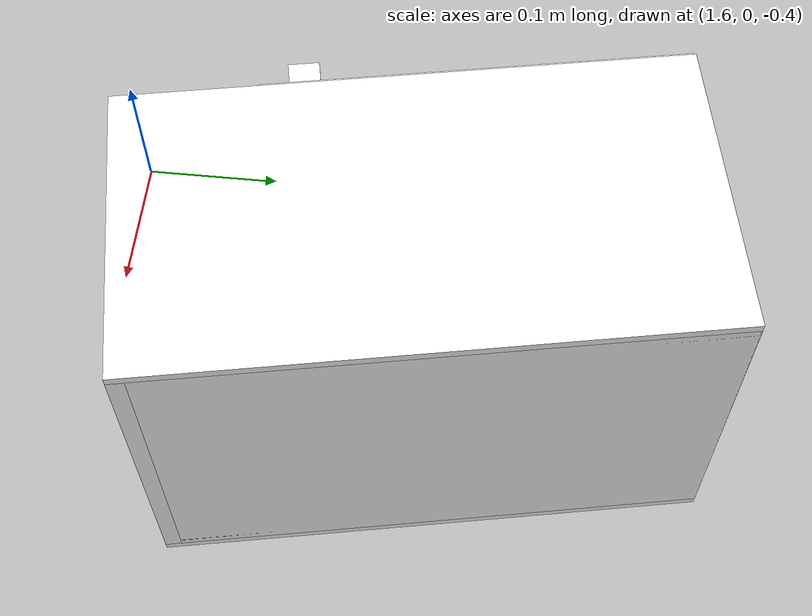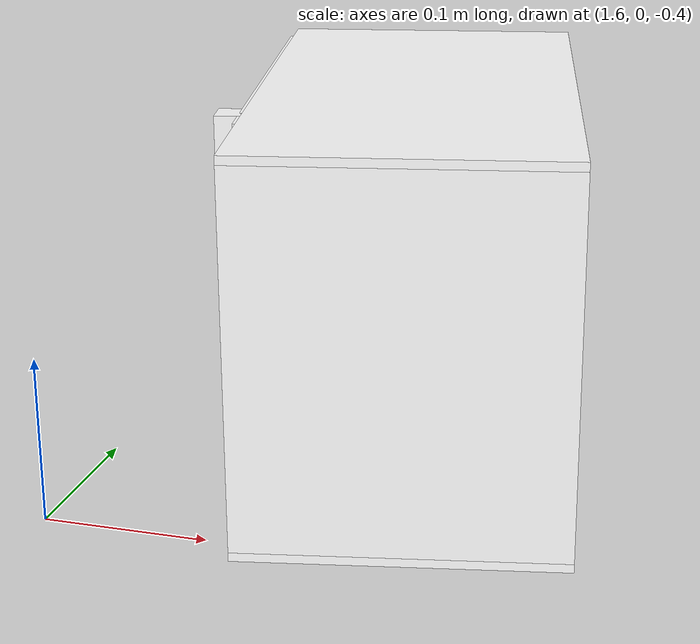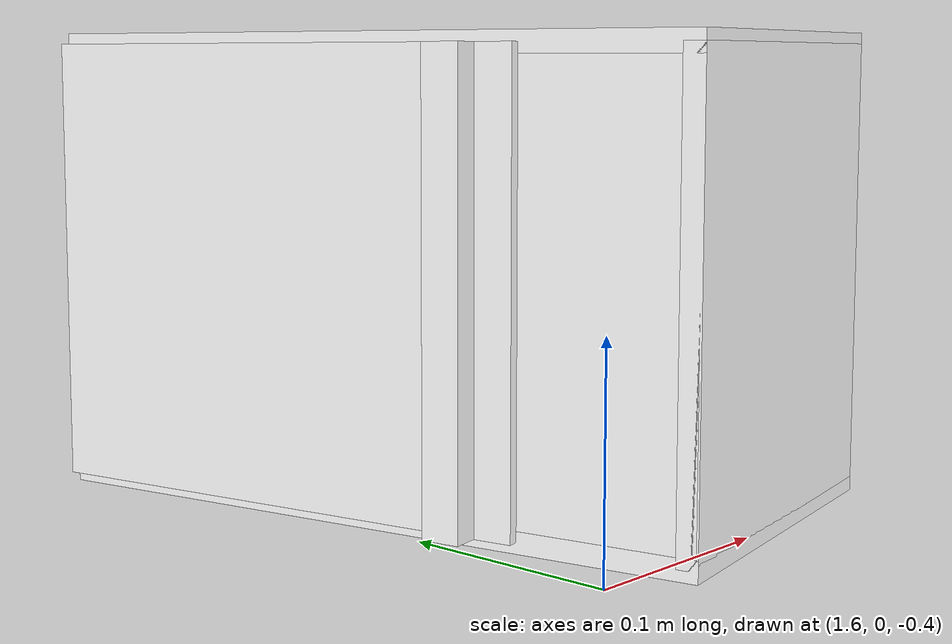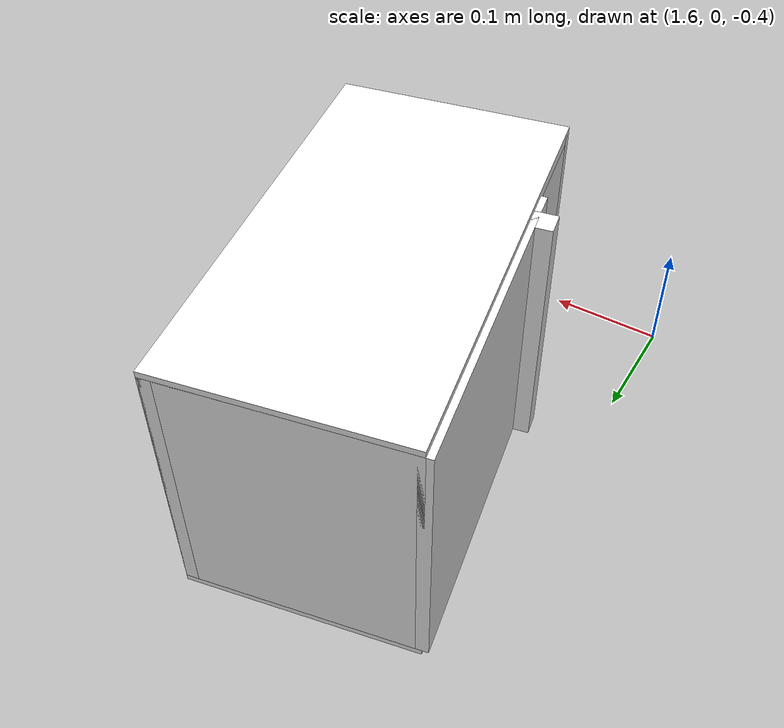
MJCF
<mujoco model="cabinet">
    <compiler angle="radian" eulerseq='zxy' />
    <option gravity = "0 0 0" />
    <option>
        <flag contact = "disable"/>
    </option>
    <statistic	extent="1.0" center="0.0 0.0 0.0"/>
    <visual>
        <map fogstart="3" fogend="5" force="0.1" znear=" 0.100000 " zfar=" 12.000000 "/>
    </visual>
    <size njmax="500" nconmax="100" />
    <actuator>
        <velocity joint="bottom_left_hinge" name="viva_revolution" kv='10'></velocity>
    </actuator>
    <asset>
        <texture builtin="flat" name="tabletex" height="32" width="32" rgb1="1 1 1" type="cube"></texture>
        <texture builtin="flat" name="objtex" height="32" width="32" rgb1="1 1 1" type="cube"></texture>
        <texture builtin="flat" name="handletex" height="32" width="32" rgb1="1 1 1" type="cube"></texture>
        <texture builtin="flat" name="wallpaper" height="32" width="32" rgb1="1 0 0" type="cube"></texture>
        <texture builtin="flat" name="kp" height="32" width="32" rgb1="1 1 1" type="cube"></texture>
        <material name="geomTable" shininess="0.03" specular="0.75" texture="tabletex"></material>
        <material name="geomObj" shininess="0.03" specular="0.75" texture="objtex"></material>
        <material name="geomHandle" shininess="0.03" specular="0.75" texture="handletex"></material>
        <material name="ax" shininess="0.03" specular="0.75" texture="wallpaper"></material>
        <material name="bg" shininess="0.03" specular="0.75" texture="wallpaper"></material>
        <material name="geomKeypad" shininess="0.03" specular="0.75" texture="kp"></material>
    </asset>
    <worldbody>
        <body name="cabinet_bottom" pos= " 1.765896 0.229059 -0.421547 "  quat= " -0.096063 0.000000 0.000000 0.995375" >
            <inertial pos="0 0 0" mass="1" diaginertia="1 1 1" />
            <geom size= " 0.101232 0.186561 0.005534 "  type="box" material="geomObj" name="b"/>
            <body name="cabinet_left" pos= " 0.000000 -0.181027 0.117553 " >
                <inertial pos="0 0 0" mass="1" diaginertia="1 1 1" />
                <geom size= " 0.101232 0.005534 0.117553 "  type="box" material="geomObj" name="c" />
            </body>
            <body name="cabinet_right" pos= " 0.000000 0.181027 0.117553 " >
                <inertial pos="0 0 0" mass="1" diaginertia="1 1 1" />
                <geom size= " 0.101232 0.005534 0.117553 "  type="box" material="geomObj" name="d" />
            </body>
            <body name="cabinet_top" pos= " 0.000000 0.000000 0.235107 " >
                <inertial pos="0 0 0" mass="1" diaginertia="1 1 1" />
                <geom size= " 0.101232 0.186561 0.005534 "  type="box" material="geomObj" name="e"/>
            </body>
            <body name="cabinet_back" pos= " -0.095698 0.000000 0.117553 "  >
                <inertial pos="0 0 0" mass="1" diaginertia="1 1 1" />
                <geom size= " 0.005534 0.186561 0.117553 "  type="box" material="geomObj" name="f" />
            </body>
            <body name="cabinet_keypad" pos= " 0.005534 0.138921 0.117553 " >
                <inertial pos="0 0 0" mass="1" diaginertia="1 1 1" />
                <geom size= " 0.095698 0.046640 0.112019 "  type="box" material="geomKeypad" name="keypizzlemynizzle" />
            </body>
            <body name="cabinet_left_hinge" pos= " 0.101232 -0.186561 0.117553 " >
                <inertial pos= " 0.000000 0.139921 0.000000 "  mass="1" diaginertia="1 1 1" />
                <joint name="bottom_left_hinge" type="hinge" pos="0 0 0" axis="0 0 1" limited="true" range= "-2.3 0"  />
                <geom size= " 0.005534 0.139921 0.117553 "  pos= " 0.000000 0.139921 0.000000 "  type="box" material="geomObj" name="g"/>
                <body name="handle_link" pos= " 0.010000 0.249842 0.000000 " >
                    <inertial pos="0 0 0" mass="1" diaginertia="1 1 1" />
                    <geom size= " 0.010000 0.010000 0.117553 "  type="box" material="geomHandle" name="h"/>
                </body>
            </body>
        </body>
        <body name="external_camera_body_0" pos="0.0 0 0.00" >
            <camera euler="-1.57 1.57 0.0" fovy=" 54.280851 " name="external_camera_0" pos="0.0 0 0"></camera>
            <inertial pos= " 0.00 0.0 0.000000 " mass="1" diaginertia="1 1 1" />
            <joint name="cam_j" pos="0.0 0 0" axis = "1 0 0" type="free" />
        </body>
    </worldbody>
</mujoco>
